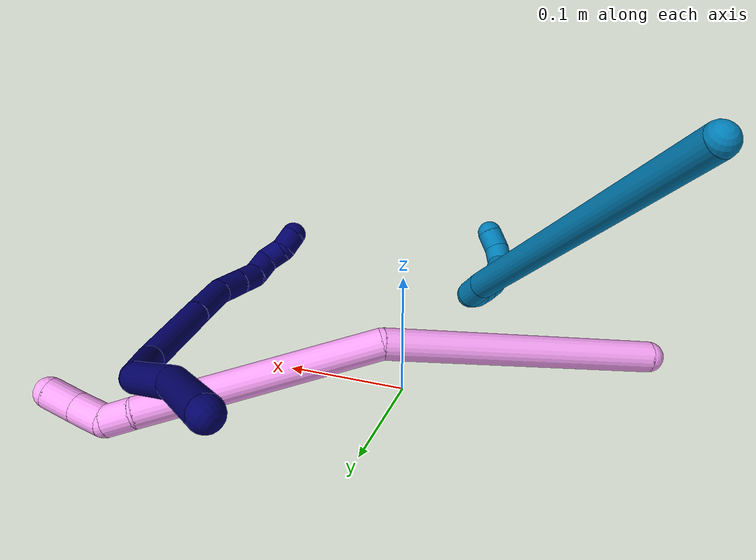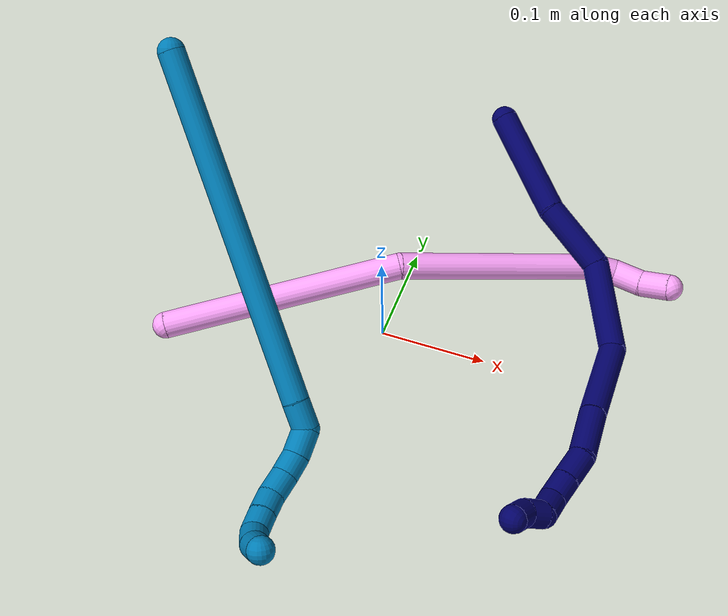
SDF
<sdf version="1.7">
 <world name="default">
  <model name="photoneo_s_sensor">
   <static>1</static>
   <pose>0 0 2 1.57079 1.57079 3.14159</pose>
   <link name="link">
    <inertial><mass>0.1</mass></inertial>
    <sensor name="sensor" type="depth">
     <update_rate>30</update_rate>
     <camera>
      <horizontal_fov>1.22</horizontal_fov>
      <image><width>1920</width><height>1200</height><format>B8G8R8</format></image>
      <clip><near>0.1</near><far>4</far></clip>
      <depth_camera><output>points</output></depth_camera>
     </camera>
     <plugin name="camera_plugin" filename="libgazebo_ros_depth_camera.so">
      <baseline>0.2</baseline>
      <alwaysOn>1</alwaysOn>
      <updateRate>0.0</updateRate>
      <cameraName>camera_ir</cameraName>
      <imageTopicName>/camera/color/image_raw</imageTopicName>
      <cameraInfoTopicName>/camera/color/camera_info</cameraInfoTopicName>
      <depthImageTopicName>/camera/depth/image_raw</depthImageTopicName>
      <depthImageCameraInfoTopicName>/camera/depth/camera_info</depthImageCameraInfoTopicName>
      <pointCloudTopicName>/camera/depth/points</pointCloudTopicName>
      <frameName>fr_optical</frameName>
      <pointCloudCutoff>0.1</pointCloudCutoff>
      <pointCloudCutoffMax>2.0</pointCloudCutoffMax>
      <distortionK1>0</distortionK1>
      <distortionK2>0</distortionK2>
      <distortionK3>0</distortionK3>
      <distortionT1>0</distortionT1>
      <distortionT2>0</distortionT2>
      <CxPrime>0</CxPrime>
      <Cx>0</Cx>
      <Cy>0</Cy>
      <focalLength>0</focalLength>
      <hackBaseline>0</hackBaseline>
     </plugin>
    </sensor>
   </link>
  </model>
  <model name="bin">
   <static>1</static>
   <link name="bottom">
    <collision name="collision-bottom">
     <pose>0 0 -0.01 0 -0 0</pose>
     <geometry><box><size>0.8 0.6 0.02</size></box></geometry>
     <surface>
      <friction><ode><mu>100</mu><mu2>100</mu2></ode></friction>
      <contact><collide_bitmask>65535</collide_bitmask></contact>
     </surface>
    </collision>
   </link>
   <link name="west_wall">
    <collision name="collision-west_wall">
     <pose>-0.41 0 0.1 0 -0 0</pose>
     <geometry><box><size>0.02 0.6 0.2</size></box></geometry>
     <surface>
      <friction><ode><mu>100</mu><mu2>100</mu2></ode></friction>
      <contact><collide_bitmask>65535</collide_bitmask></contact>
     </surface>
    </collision>
   </link>
   <link name="east_wall">
    <collision name="collision-east_wall">
     <pose>0.41 0 0.1 0 -0 0</pose>
     <geometry><box><size>0.02 0.6 0.2</size></box></geometry>
     <surface>
      <friction><ode><mu>100</mu><mu2>100</mu2></ode></friction>
      <contact><collide_bitmask>65535</collide_bitmask></contact>
     </surface>
    </collision>
   </link>
   <link name="south_wall">
    <collision name="collision-south_wall">
     <pose>0 -0.31 0.1 0 -0 0</pose>
     <geometry><box><size>0.8 0.02 0.2</size></box></geometry>
     <surface>
      <friction><ode><mu>100</mu><mu2>100</mu2></ode></friction>
      <contact><collide_bitmask>65535</collide_bitmask></contact>
     </surface>
    </collision>
   </link>
   <link name="north_wall">
    <collision name="collision-north_wall">
     <pose>0 0.31 0.1 0 -0 0</pose>
     <geometry><box><size>0.8 0.02 0.2</size></box></geometry>
     <surface>
      <friction><ode><mu>100</mu><mu2>100</mu2></ode></friction>
      <contact><collide_bitmask>65535</collide_bitmask></contact>
     </surface>
    </collision>
   </link>
  </model>
  <model name="4">
   <static>0</static>
   <link name="4">
    <collision name="collision-cylinder-e_1_1_4">
     <pose>0.097656 0.051441 0.02268 -1.15554 1.04845 -0.720994</pose>
     <geometry><cylinder><radius>0.0125</radius><length>0.225364</length></cylinder></geometry>
     <surface>
      <friction><ode><mu>1.16</mu><mu2>1.16</mu2><slip1>0</slip1><slip2>0</slip2></ode></friction>
      <contact><ode><kp>1e+06</kp><kd>1</kd><max_vel>0</max_vel><min_depth>0.001</min_depth></ode></contact>
     </surface>
    </collision>
    <visual name="visual-cylinder-e_1_1_4">
     <pose>0.097656 0.051441 0.02268 -1.15554 1.04845 -0.720994</pose>
     <geometry><cylinder><radius>0.0125</radius><length>0.225364</length></cylinder></geometry>
     <material><ambient>1 0.65098 0.996078 1</ambient></material>
    </visual>
    <collision name="collision-cylinder-e_2_4_5">
     <pose>0.287107 0.113524 0.073319 -0.363725 1.25575 -0.265396</pose>
     <geometry><cylinder><radius>0.0125</radius><length>0.193093</length></cylinder></geometry>
     <surface>
      <friction><ode><mu>1.16</mu><mu2>1.16</mu2><slip1>0</slip1><slip2>0</slip2></ode></friction>
      <contact><ode><kp>1e+06</kp><kd>1</kd><max_vel>0</max_vel><min_depth>0.001</min_depth></ode></contact>
     </surface>
    </collision>
    <visual name="visual-cylinder-e_2_4_5">
     <pose>0.287107 0.113524 0.073319 -0.363725 1.25575 -0.265396</pose>
     <geometry><cylinder><radius>0.0125</radius><length>0.193093</length></cylinder></geometry>
     <material><ambient>1 0.65098 0.996078 1</ambient></material>
    </visual>
    <collision name="collision-cylinder-e_3_5_6">
     <pose>0.38934 0.124321 0.106832 -0.027784 1.0816 -0.016685</pose>
     <geometry><cylinder><radius>0.0125</radius><length>0.02365</length></cylinder></geometry>
     <surface>
      <friction><ode><mu>1.16</mu><mu2>1.16</mu2><slip1>0</slip1><slip2>0</slip2></ode></friction>
      <contact><ode><kp>1e+06</kp><kd>1</kd><max_vel>0</max_vel><min_depth>0.001</min_depth></ode></contact>
     </surface>
    </collision>
    <visual name="visual-cylinder-e_3_5_6">
     <pose>0.38934 0.124321 0.106832 -0.027784 1.0816 -0.016685</pose>
     <geometry><cylinder><radius>0.0125</radius><length>0.02365</length></cylinder></geometry>
     <material><ambient>1 0.65098 0.996078 1</ambient></material>
    </visual>
    <collision name="collision-cylinder-e_4_6_7">
     <pose>0.406697 0.129952 0.124402 -0.427676 0.482661 -0.106796</pose>
     <geometry><cylinder><radius>0.0125</radius><length>0.029815</length></cylinder></geometry>
     <surface>
      <friction><ode><mu>1.16</mu><mu2>1.16</mu2><slip1>0</slip1><slip2>0</slip2></ode></friction>
      <contact><ode><kp>1e+06</kp><kd>1</kd><max_vel>0</max_vel><min_depth>0.001</min_depth></ode></contact>
     </surface>
    </collision>
    <visual name="visual-cylinder-e_4_6_7">
     <pose>0.406697 0.129952 0.124402 -0.427676 0.482661 -0.106796</pose>
     <geometry><cylinder><radius>0.0125</radius><length>0.029815</length></cylinder></geometry>
     <material><ambient>1 0.65098 0.996078 1</ambient></material>
    </visual>
    <collision name="collision-cylinder-e_5_7_2">
     <pose>0.420823 0.143168 0.14565 -0.697599 0.539069 -0.20026</pose>
     <geometry><cylinder><radius>0.0125</radius><length>0.028078</length></cylinder></geometry>
     <surface>
      <friction><ode><mu>1.16</mu><mu2>1.16</mu2><slip1>0</slip1><slip2>0</slip2></ode></friction>
      <contact><ode><kp>1e+06</kp><kd>1</kd><max_vel>0</max_vel><min_depth>0.001</min_depth></ode></contact>
     </surface>
    </collision>
    <visual name="visual-cylinder-e_5_7_2">
     <pose>0.420823 0.143168 0.14565 -0.697599 0.539069 -0.20026</pose>
     <geometry><cylinder><radius>0.0125</radius><length>0.028078</length></cylinder></geometry>
     <material><ambient>1 0.65098 0.996078 1</ambient></material>
    </visual>
    <collision name="collision-sphere-2">
     <pose>0.42803 0.150908 0.154884 0 -0 0</pose>
     <geometry><sphere><radius>0.0125</radius></sphere></geometry>
     <surface>
      <friction><ode><mu>1.16</mu><mu2>1.16</mu2><slip1>0</slip1><slip2>0</slip2></ode></friction>
      <contact><ode><kp>1e+06</kp><kd>1</kd><max_vel>0</max_vel><min_depth>0.001</min_depth></ode></contact>
     </surface>
    </collision>
    <visual name="visual-sphere-2">
     <pose>0.42803 0.150908 0.154884 0 -0 0</pose>
     <geometry><sphere><radius>0.0125</radius></sphere></geometry>
     <material><ambient>1 0.65098 0.996078 1</ambient></material>
    </visual>
    <collision name="collision-sphere-7">
     <pose>0.413616 0.135429 0.136417 0 -0 0</pose>
     <geometry><sphere><radius>0.0125</radius></sphere></geometry>
     <surface>
      <friction><ode><mu>1.16</mu><mu2>1.16</mu2><slip1>0</slip1><slip2>0</slip2></ode></friction>
      <contact><ode><kp>1e+06</kp><kd>1</kd><max_vel>0</max_vel><min_depth>0.001</min_depth></ode></contact>
     </surface>
    </collision>
    <visual name="visual-sphere-7">
     <pose>0.413616 0.135429 0.136417 0 -0 0</pose>
     <geometry><sphere><radius>0.0125</radius></sphere></geometry>
     <material><ambient>1 0.65098 0.996078 1</ambient></material>
    </visual>
    <collision name="collision-sphere-6">
     <pose>0.399778 0.124476 0.112387 0 -0 0</pose>
     <geometry><sphere><radius>0.0125</radius></sphere></geometry>
     <surface>
      <friction><ode><mu>1.16</mu><mu2>1.16</mu2><slip1>0</slip1><slip2>0</slip2></ode></friction>
      <contact><ode><kp>1e+06</kp><kd>1</kd><max_vel>0</max_vel><min_depth>0.001</min_depth></ode></contact>
     </surface>
    </collision>
    <visual name="visual-sphere-6">
     <pose>0.399778 0.124476 0.112387 0 -0 0</pose>
     <geometry><sphere><radius>0.0125</radius></sphere></geometry>
     <material><ambient>1 0.65098 0.996078 1</ambient></material>
    </visual>
    <collision name="collision-sphere-5">
     <pose>0.378902 0.124167 0.101277 0 -0 0</pose>
     <geometry><sphere><radius>0.0125</radius></sphere></geometry>
     <surface>
      <friction><ode><mu>1.16</mu><mu2>1.16</mu2><slip1>0</slip1><slip2>0</slip2></ode></friction>
      <contact><ode><kp>1e+06</kp><kd>1</kd><max_vel>0</max_vel><min_depth>0.001</min_depth></ode></contact>
     </surface>
    </collision>
    <visual name="visual-sphere-5">
     <pose>0.378902 0.124167 0.101277 0 -0 0</pose>
     <geometry><sphere><radius>0.0125</radius></sphere></geometry>
     <material><ambient>1 0.65098 0.996078 1</ambient></material>
    </visual>
    <collision name="collision-sphere-1">
     <geometry><sphere><radius>0.0125</radius></sphere></geometry>
     <surface>
      <friction><ode><mu>1.16</mu><mu2>1.16</mu2><slip1>0</slip1><slip2>0</slip2></ode></friction>
      <contact><ode><kp>1e+06</kp><kd>1</kd><max_vel>0</max_vel><min_depth>0.001</min_depth></ode></contact>
     </surface>
    </collision>
    <visual name="visual-sphere-1">
     <geometry><sphere><radius>0.0125</radius></sphere></geometry>
     <material><ambient>1 0.65098 0.996078 1</ambient></material>
    </visual>
    <collision name="collision-sphere-4">
     <pose>0.195312 0.102881 0.04536 0 -0 0</pose>
     <geometry><sphere><radius>0.0125</radius></sphere></geometry>
     <surface>
      <friction><ode><mu>1.16</mu><mu2>1.16</mu2><slip1>0</slip1><slip2>0</slip2></ode></friction>
      <contact><ode><kp>1e+06</kp><kd>1</kd><max_vel>0</max_vel><min_depth>0.001</min_depth></ode></contact>
     </surface>
    </collision>
    <visual name="visual-sphere-4">
     <pose>0.195312 0.102881 0.04536 0 -0 0</pose>
     <geometry><sphere><radius>0.0125</radius></sphere></geometry>
     <material><ambient>1 0.65098 0.996078 1</ambient></material>
    </visual>
    <inertial>
     <pose>0.221192 0.088696 0.059187 0 -0 0</pose>
     <mass>0.5</mass>
     <inertia>
      <ixx>0.000215</ixx>
      <ixy>0</ixy>
      <ixz>0</ixz>
      <iyy>0.001049</iyy>
      <iyz>0</iyz>
      <izz>-0.001914</izz>
     </inertia>
    </inertial>
   </link>
   <pose>-0.187728 -0.076152 0.025281 1.78438 0.27349 0.83335</pose>
  </model>
  <model name="7">
   <static>0</static>
   <link name="7">
    <collision name="collision-cylinder-e_1_1_4">
     <pose>0.020679 -0.032017 0.035319 0.736402 0.409294 0.159804</pose>
     <geometry><cylinder><radius>0.0125</radius><length>0.103925</length></cylinder></geometry>
     <surface>
      <friction><ode><mu>1.16</mu><mu2>1.16</mu2><slip1>0</slip1><slip2>0</slip2></ode></friction>
      <contact><ode><kp>1e+06</kp><kd>1</kd><max_vel>0</max_vel><min_depth>0.001</min_depth></ode></contact>
     </surface>
    </collision>
    <visual name="visual-cylinder-e_1_1_4">
     <pose>0.020679 -0.032017 0.035319 0.736402 0.409294 0.159804</pose>
     <geometry><cylinder><radius>0.0125</radius><length>0.103925</length></cylinder></geometry>
     <material><ambient>0.003922 0 0.403922 1</ambient></material>
    </visual>
    <collision name="collision-cylinder-e_2_4_5">
     <pose>0.060095 -0.078182 0.095352 0.519922 0.581942 0.158971</pose>
     <geometry><cylinder><radius>0.0125</radius><length>0.068179</length></cylinder></geometry>
     <surface>
      <friction><ode><mu>1.16</mu><mu2>1.16</mu2><slip1>0</slip1><slip2>0</slip2></ode></friction>
      <contact><ode><kp>1e+06</kp><kd>1</kd><max_vel>0</max_vel><min_depth>0.001</min_depth></ode></contact>
     </surface>
    </collision>
    <visual name="visual-cylinder-e_2_4_5">
     <pose>0.060095 -0.078182 0.095352 0.519922 0.581942 0.158971</pose>
     <geometry><cylinder><radius>0.0125</radius><length>0.068179</length></cylinder></geometry>
     <material><ambient>0.003922 0 0.403922 1</ambient></material>
    </visual>
    <collision name="collision-cylinder-e_3_5_6">
     <pose>0.090747 -0.126552 0.142268 0.995317 0.284159 0.15511</pose>
     <geometry><cylinder><radius>0.0125</radius><length>0.084993</length></cylinder></geometry>
     <surface>
      <friction><ode><mu>1.16</mu><mu2>1.16</mu2><slip1>0</slip1><slip2>0</slip2></ode></friction>
      <contact><ode><kp>1e+06</kp><kd>1</kd><max_vel>0</max_vel><min_depth>0.001</min_depth></ode></contact>
     </surface>
    </collision>
    <visual name="visual-cylinder-e_3_5_6">
     <pose>0.090747 -0.126552 0.142268 0.995317 0.284159 0.15511</pose>
     <geometry><cylinder><radius>0.0125</radius><length>0.084993</length></cylinder></geometry>
     <material><ambient>0.003922 0 0.403922 1</ambient></material>
    </visual>
    <collision name="collision-cylinder-e_4_6_7">
     <pose>0.090193 -0.196139 0.178611 1.19038 -0.316333 -0.215159</pose>
     <geometry><cylinder><radius>0.0125</radius><length>0.080153</length></cylinder></geometry>
     <surface>
      <friction><ode><mu>1.16</mu><mu2>1.16</mu2><slip1>0</slip1><slip2>0</slip2></ode></friction>
      <contact><ode><kp>1e+06</kp><kd>1</kd><max_vel>0</max_vel><min_depth>0.001</min_depth></ode></contact>
     </surface>
    </collision>
    <visual name="visual-cylinder-e_4_6_7">
     <pose>0.090193 -0.196139 0.178611 1.19038 -0.316333 -0.215159</pose>
     <geometry><cylinder><radius>0.0125</radius><length>0.080153</length></cylinder></geometry>
     <material><ambient>0.003922 0 0.403922 1</ambient></material>
    </visual>
    <collision name="collision-cylinder-e_5_7_8">
     <pose>0.071748 -0.252769 0.201458 1.18226 -0.254523 -0.171342</pose>
     <geometry><cylinder><radius>0.0125</radius><length>0.047486</length></cylinder></geometry>
     <surface>
      <friction><ode><mu>1.16</mu><mu2>1.16</mu2><slip1>0</slip1><slip2>0</slip2></ode></friction>
      <contact><ode><kp>1e+06</kp><kd>1</kd><max_vel>0</max_vel><min_depth>0.001</min_depth></ode></contact>
     </surface>
    </collision>
    <visual name="visual-cylinder-e_5_7_8">
     <pose>0.071748 -0.252769 0.201458 1.18226 -0.254523 -0.171342</pose>
     <geometry><cylinder><radius>0.0125</radius><length>0.047486</length></cylinder></geometry>
     <material><ambient>0.003922 0 0.403922 1</ambient></material>
    </visual>
    <collision name="collision-cylinder-e_6_8_9">
     <pose>0.061003 -0.287221 0.211153 1.49583 -0.346027 -0.321458</pose>
     <geometry><cylinder><radius>0.0125</radius><length>0.028113</length></cylinder></geometry>
     <surface>
      <friction><ode><mu>1.16</mu><mu2>1.16</mu2><slip1>0</slip1><slip2>0</slip2></ode></friction>
      <contact><ode><kp>1e+06</kp><kd>1</kd><max_vel>0</max_vel><min_depth>0.001</min_depth></ode></contact>
     </surface>
    </collision>
    <visual name="visual-cylinder-e_6_8_9">
     <pose>0.061003 -0.287221 0.211153 1.49583 -0.346027 -0.321458</pose>
     <geometry><cylinder><radius>0.0125</radius><length>0.028113</length></cylinder></geometry>
     <material><ambient>0.003922 0 0.403922 1</ambient></material>
    </visual>
    <collision name="collision-cylinder-e_7_9_10">
     <pose>0.052329 -0.311411 0.213019 1.49138 -0.340114 -0.314567</pose>
     <geometry><cylinder><radius>0.0125</radius><length>0.023418</length></cylinder></geometry>
     <surface>
      <friction><ode><mu>1.16</mu><mu2>1.16</mu2><slip1>0</slip1><slip2>0</slip2></ode></friction>
      <contact><ode><kp>1e+06</kp><kd>1</kd><max_vel>0</max_vel><min_depth>0.001</min_depth></ode></contact>
     </surface>
    </collision>
    <visual name="visual-cylinder-e_7_9_10">
     <pose>0.052329 -0.311411 0.213019 1.49138 -0.340114 -0.314567</pose>
     <geometry><cylinder><radius>0.0125</radius><length>0.023418</length></cylinder></geometry>
     <material><ambient>0.003922 0 0.403922 1</ambient></material>
    </visual>
    <collision name="collision-cylinder-e_8_10_11">
     <pose>0.041548 -0.331211 0.21753 1.17892 -0.625531 -0.425975</pose>
     <geometry><cylinder><radius>0.0125</radius><length>0.023483</length></cylinder></geometry>
     <surface>
      <friction><ode><mu>1.16</mu><mu2>1.16</mu2><slip1>0</slip1><slip2>0</slip2></ode></friction>
      <contact><ode><kp>1e+06</kp><kd>1</kd><max_vel>0</max_vel><min_depth>0.001</min_depth></ode></contact>
     </surface>
    </collision>
    <visual name="visual-cylinder-e_8_10_11">
     <pose>0.041548 -0.331211 0.21753 1.17892 -0.625531 -0.425975</pose>
     <geometry><cylinder><radius>0.0125</radius><length>0.023483</length></cylinder></geometry>
     <material><ambient>0.003922 0 0.403922 1</ambient></material>
    </visual>
    <collision name="collision-cylinder-e_9_11_12">
     <pose>0.02584 -0.343835 0.218261 2.22 -1.07261 -1.74995</pose>
     <geometry><cylinder><radius>0.0125</radius><length>0.020109</length></cylinder></geometry>
     <surface>
      <friction><ode><mu>1.16</mu><mu2>1.16</mu2><slip1>0</slip1><slip2>0</slip2></ode></friction>
      <contact><ode><kp>1e+06</kp><kd>1</kd><max_vel>0</max_vel><min_depth>0.001</min_depth></ode></contact>
     </surface>
    </collision>
    <visual name="visual-cylinder-e_9_11_12">
     <pose>0.02584 -0.343835 0.218261 2.22 -1.07261 -1.74995</pose>
     <geometry><cylinder><radius>0.0125</radius><length>0.020109</length></cylinder></geometry>
     <material><ambient>0.003922 0 0.403922 1</ambient></material>
    </visual>
    <collision name="collision-cylinder-e_10_12_2">
     <pose>0.008751 -0.353037 0.217443 1.20054 -0.961261 -0.685658</pose>
     <geometry><cylinder><radius>0.0125</radius><length>0.02014</length></cylinder></geometry>
     <surface>
      <friction><ode><mu>1.16</mu><mu2>1.16</mu2><slip1>0</slip1><slip2>0</slip2></ode></friction>
      <contact><ode><kp>1e+06</kp><kd>1</kd><max_vel>0</max_vel><min_depth>0.001</min_depth></ode></contact>
     </surface>
    </collision>
    <visual name="visual-cylinder-e_10_12_2">
     <pose>0.008751 -0.353037 0.217443 1.20054 -0.961261 -0.685658</pose>
     <geometry><cylinder><radius>0.0125</radius><length>0.02014</length></cylinder></geometry>
     <material><ambient>0.003922 0 0.403922 1</ambient></material>
    </visual>
    <collision name="collision-sphere-2">
     <pose>0.000494 -0.358411 0.219529 0 -0 0</pose>
     <geometry><sphere><radius>0.0125</radius></sphere></geometry>
     <surface>
      <friction><ode><mu>1.16</mu><mu2>1.16</mu2><slip1>0</slip1><slip2>0</slip2></ode></friction>
      <contact><ode><kp>1e+06</kp><kd>1</kd><max_vel>0</max_vel><min_depth>0.001</min_depth></ode></contact>
     </surface>
    </collision>
    <visual name="visual-sphere-2">
     <pose>0.000494 -0.358411 0.219529 0 -0 0</pose>
     <geometry><sphere><radius>0.0125</radius></sphere></geometry>
     <material><ambient>0.003922 0 0.403922 1</ambient></material>
    </visual>
    <collision name="collision-sphere-12">
     <pose>0.017008 -0.347662 0.215357 0 -0 0</pose>
     <geometry><sphere><radius>0.0125</radius></sphere></geometry>
     <surface>
      <friction><ode><mu>1.16</mu><mu2>1.16</mu2><slip1>0</slip1><slip2>0</slip2></ode></friction>
      <contact><ode><kp>1e+06</kp><kd>1</kd><max_vel>0</max_vel><min_depth>0.001</min_depth></ode></contact>
     </surface>
    </collision>
    <visual name="visual-sphere-12">
     <pose>0.017008 -0.347662 0.215357 0 -0 0</pose>
     <geometry><sphere><radius>0.0125</radius></sphere></geometry>
     <material><ambient>0.003922 0 0.403922 1</ambient></material>
    </visual>
    <collision name="collision-sphere-11">
     <pose>0.034673 -0.340008 0.221166 0 -0 0</pose>
     <geometry><sphere><radius>0.0125</radius></sphere></geometry>
     <surface>
      <friction><ode><mu>1.16</mu><mu2>1.16</mu2><slip1>0</slip1><slip2>0</slip2></ode></friction>
      <contact><ode><kp>1e+06</kp><kd>1</kd><max_vel>0</max_vel><min_depth>0.001</min_depth></ode></contact>
     </surface>
    </collision>
    <visual name="visual-sphere-11">
     <pose>0.034673 -0.340008 0.221166 0 -0 0</pose>
     <geometry><sphere><radius>0.0125</radius></sphere></geometry>
     <material><ambient>0.003922 0 0.403922 1</ambient></material>
    </visual>
    <collision name="collision-sphere-10">
     <pose>0.048423 -0.322414 0.213895 0 -0 0</pose>
     <geometry><sphere><radius>0.0125</radius></sphere></geometry>
     <surface>
      <friction><ode><mu>1.16</mu><mu2>1.16</mu2><slip1>0</slip1><slip2>0</slip2></ode></friction>
      <contact><ode><kp>1e+06</kp><kd>1</kd><max_vel>0</max_vel><min_depth>0.001</min_depth></ode></contact>
     </surface>
    </collision>
    <visual name="visual-sphere-10">
     <pose>0.048423 -0.322414 0.213895 0 -0 0</pose>
     <geometry><sphere><radius>0.0125</radius></sphere></geometry>
     <material><ambient>0.003922 0 0.403922 1</ambient></material>
    </visual>
    <collision name="collision-sphere-9">
     <pose>0.056235 -0.300407 0.212144 0 -0 0</pose>
     <geometry><sphere><radius>0.0125</radius></sphere></geometry>
     <surface>
      <friction><ode><mu>1.16</mu><mu2>1.16</mu2><slip1>0</slip1><slip2>0</slip2></ode></friction>
      <contact><ode><kp>1e+06</kp><kd>1</kd><max_vel>0</max_vel><min_depth>0.001</min_depth></ode></contact>
     </surface>
    </collision>
    <visual name="visual-sphere-9">
     <pose>0.056235 -0.300407 0.212144 0 -0 0</pose>
     <geometry><sphere><radius>0.0125</radius></sphere></geometry>
     <material><ambient>0.003922 0 0.403922 1</ambient></material>
    </visual>
    <collision name="collision-sphere-4">
     <pose>0.041358 -0.064033 0.070637 0 -0 0</pose>
     <geometry><sphere><radius>0.0125</radius></sphere></geometry>
     <surface>
      <friction><ode><mu>1.16</mu><mu2>1.16</mu2><slip1>0</slip1><slip2>0</slip2></ode></friction>
      <contact><ode><kp>1e+06</kp><kd>1</kd><max_vel>0</max_vel><min_depth>0.001</min_depth></ode></contact>
     </surface>
    </collision>
    <visual name="visual-sphere-4">
     <pose>0.041358 -0.064033 0.070637 0 -0 0</pose>
     <geometry><sphere><radius>0.0125</radius></sphere></geometry>
     <material><ambient>0.003922 0 0.403922 1</ambient></material>
    </visual>
    <collision name="collision-sphere-1">
     <geometry><sphere><radius>0.0125</radius></sphere></geometry>
     <surface>
      <friction><ode><mu>1.16</mu><mu2>1.16</mu2><slip1>0</slip1><slip2>0</slip2></ode></friction>
      <contact><ode><kp>1e+06</kp><kd>1</kd><max_vel>0</max_vel><min_depth>0.001</min_depth></ode></contact>
     </surface>
    </collision>
    <visual name="visual-sphere-1">
     <geometry><sphere><radius>0.0125</radius></sphere></geometry>
     <material><ambient>0.003922 0 0.403922 1</ambient></material>
    </visual>
    <collision name="collision-sphere-8">
     <pose>0.06577 -0.274035 0.210163 0 -0 0</pose>
     <geometry><sphere><radius>0.0125</radius></sphere></geometry>
     <surface>
      <friction><ode><mu>1.16</mu><mu2>1.16</mu2><slip1>0</slip1><slip2>0</slip2></ode></friction>
      <contact><ode><kp>1e+06</kp><kd>1</kd><max_vel>0</max_vel><min_depth>0.001</min_depth></ode></contact>
     </surface>
    </collision>
    <visual name="visual-sphere-8">
     <pose>0.06577 -0.274035 0.210163 0 -0 0</pose>
     <geometry><sphere><radius>0.0125</radius></sphere></geometry>
     <material><ambient>0.003922 0 0.403922 1</ambient></material>
    </visual>
    <collision name="collision-sphere-5">
     <pose>0.078833 -0.09233 0.120067 0 -0 0</pose>
     <geometry><sphere><radius>0.0125</radius></sphere></geometry>
     <surface>
      <friction><ode><mu>1.16</mu><mu2>1.16</mu2><slip1>0</slip1><slip2>0</slip2></ode></friction>
      <contact><ode><kp>1e+06</kp><kd>1</kd><max_vel>0</max_vel><min_depth>0.001</min_depth></ode></contact>
     </surface>
    </collision>
    <visual name="visual-sphere-5">
     <pose>0.078833 -0.09233 0.120067 0 -0 0</pose>
     <geometry><sphere><radius>0.0125</radius></sphere></geometry>
     <material><ambient>0.003922 0 0.403922 1</ambient></material>
    </visual>
    <collision name="collision-sphere-6">
     <pose>0.10266 -0.160774 0.164469 0 -0 0</pose>
     <geometry><sphere><radius>0.0125</radius></sphere></geometry>
     <surface>
      <friction><ode><mu>1.16</mu><mu2>1.16</mu2><slip1>0</slip1><slip2>0</slip2></ode></friction>
      <contact><ode><kp>1e+06</kp><kd>1</kd><max_vel>0</max_vel><min_depth>0.001</min_depth></ode></contact>
     </surface>
    </collision>
    <visual name="visual-sphere-6">
     <pose>0.10266 -0.160774 0.164469 0 -0 0</pose>
     <geometry><sphere><radius>0.0125</radius></sphere></geometry>
     <material><ambient>0.003922 0 0.403922 1</ambient></material>
    </visual>
    <collision name="collision-sphere-7">
     <pose>0.077726 -0.231504 0.192753 0 -0 0</pose>
     <geometry><sphere><radius>0.0125</radius></sphere></geometry>
     <surface>
      <friction><ode><mu>1.16</mu><mu2>1.16</mu2><slip1>0</slip1><slip2>0</slip2></ode></friction>
      <contact><ode><kp>1e+06</kp><kd>1</kd><max_vel>0</max_vel><min_depth>0.001</min_depth></ode></contact>
     </surface>
    </collision>
    <visual name="visual-sphere-7">
     <pose>0.077726 -0.231504 0.192753 0 -0 0</pose>
     <geometry><sphere><radius>0.0125</radius></sphere></geometry>
     <material><ambient>0.003922 0 0.403922 1</ambient></material>
    </visual>
    <inertial>
     <pose>0.058415 -0.168615 0.141895 0 -0 0</pose>
     <mass>0.5</mass>
     <inertia>
      <ixx>0.000235</ixx>
      <ixy>0</ixy>
      <ixz>0</ixz>
      <iyy>0.000145</iyy>
      <iyz>0</iyz>
      <izz>0.000143</izz>
     </inertia>
    </inertial>
   </link>
   <pose>0.049488 0.217411 0.097858 0.781925 1.03188 0.518435</pose>
  </model>
  <model name="9">
   <static>0</static>
   <link name="9">
    <collision name="collision-cylinder-e_1_1_4">
     <pose>-0.010817 -0.054444 0.152546 0.342811 -0.066684 -0.011547</pose>
     <geometry><cylinder><radius>0.0125</radius><length>0.324662</length></cylinder></geometry>
     <surface>
      <friction><ode><mu>1.16</mu><mu2>1.16</mu2><slip1>0</slip1><slip2>0</slip2></ode></friction>
      <contact><ode><kp>1e+06</kp><kd>1</kd><max_vel>0</max_vel><min_depth>0.001</min_depth></ode></contact>
     </surface>
    </collision>
    <visual name="visual-cylinder-e_1_1_4">
     <pose>-0.010817 -0.054444 0.152546 0.342811 -0.066684 -0.011547</pose>
     <geometry><cylinder><radius>0.0125</radius><length>0.324662</length></cylinder></geometry>
     <material><ambient>0 0.490196 0.709804 1</ambient></material>
    </visual>
    <collision name="collision-cylinder-e_2_4_5">
     <pose>-0.023332 -0.112621 0.317705 0.287713 -0.12837 -0.01862</pose>
     <geometry><cylinder><radius>0.0125</radius><length>0.026528</length></cylinder></geometry>
     <surface>
      <friction><ode><mu>1.16</mu><mu2>1.16</mu2><slip1>0</slip1><slip2>0</slip2></ode></friction>
      <contact><ode><kp>1e+06</kp><kd>1</kd><max_vel>0</max_vel><min_depth>0.001</min_depth></ode></contact>
     </surface>
    </collision>
    <visual name="visual-cylinder-e_2_4_5">
     <pose>-0.023332 -0.112621 0.317705 0.287713 -0.12837 -0.01862</pose>
     <geometry><cylinder><radius>0.0125</radius><length>0.026528</length></cylinder></geometry>
     <material><ambient>0 0.490196 0.709804 1</ambient></material>
    </visual>
    <collision name="collision-cylinder-e_3_5_6">
     <pose>-0.017827 -0.116685 0.340692 0.031928 0.60669 0.009994</pose>
     <geometry><cylinder><radius>0.0125</radius><length>0.025265</length></cylinder></geometry>
     <surface>
      <friction><ode><mu>1.16</mu><mu2>1.16</mu2><slip1>0</slip1><slip2>0</slip2></ode></friction>
      <contact><ode><kp>1e+06</kp><kd>1</kd><max_vel>0</max_vel><min_depth>0.001</min_depth></ode></contact>
     </surface>
    </collision>
    <visual name="visual-cylinder-e_3_5_6">
     <pose>-0.017827 -0.116685 0.340692 0.031928 0.60669 0.009994</pose>
     <geometry><cylinder><radius>0.0125</radius><length>0.025265</length></cylinder></geometry>
     <material><ambient>0 0.490196 0.709804 1</ambient></material>
    </visual>
    <collision name="collision-cylinder-e_4_6_7">
     <pose>-0.002874 -0.117439 0.357773 0.062916 0.856398 0.028725</pose>
     <geometry><cylinder><radius>0.0125</radius><length>0.020518</length></cylinder></geometry>
     <surface>
      <friction><ode><mu>1.16</mu><mu2>1.16</mu2><slip1>0</slip1><slip2>0</slip2></ode></friction>
      <contact><ode><kp>1e+06</kp><kd>1</kd><max_vel>0</max_vel><min_depth>0.001</min_depth></ode></contact>
     </surface>
    </collision>
    <visual name="visual-cylinder-e_4_6_7">
     <pose>-0.002874 -0.117439 0.357773 0.062916 0.856398 0.028725</pose>
     <geometry><cylinder><radius>0.0125</radius><length>0.020518</length></cylinder></geometry>
     <material><ambient>0 0.490196 0.709804 1</ambient></material>
    </visual>
    <collision name="collision-cylinder-e_5_7_8">
     <pose>0.013987 -0.118684 0.370953 0.126415 0.949378 0.065026</pose>
     <geometry><cylinder><radius>0.0125</radius><length>0.02241</length></cylinder></geometry>
     <surface>
      <friction><ode><mu>1.16</mu><mu2>1.16</mu2><slip1>0</slip1><slip2>0</slip2></ode></friction>
      <contact><ode><kp>1e+06</kp><kd>1</kd><max_vel>0</max_vel><min_depth>0.001</min_depth></ode></contact>
     </surface>
    </collision>
    <visual name="visual-cylinder-e_5_7_8">
     <pose>0.013987 -0.118684 0.370953 0.126415 0.949378 0.065026</pose>
     <geometry><cylinder><radius>0.0125</radius><length>0.02241</length></cylinder></geometry>
     <material><ambient>0 0.490196 0.709804 1</ambient></material>
    </visual>
    <collision name="collision-cylinder-e_6_8_9">
     <pose>0.03133 -0.122785 0.382204 0.601266 0.957381 0.319044</pose>
     <geometry><cylinder><radius>0.0125</radius><length>0.020138</length></cylinder></geometry>
     <surface>
      <friction><ode><mu>1.16</mu><mu2>1.16</mu2><slip1>0</slip1><slip2>0</slip2></ode></friction>
      <contact><ode><kp>1e+06</kp><kd>1</kd><max_vel>0</max_vel><min_depth>0.001</min_depth></ode></contact>
     </surface>
    </collision>
    <visual name="visual-cylinder-e_6_8_9">
     <pose>0.03133 -0.122785 0.382204 0.601266 0.957381 0.319044</pose>
     <geometry><cylinder><radius>0.0125</radius><length>0.020138</length></cylinder></geometry>
     <material><ambient>0 0.490196 0.709804 1</ambient></material>
    </visual>
    <collision name="collision-cylinder-e_7_9_10">
     <pose>0.047608 -0.129469 0.392097 0.587358 0.918626 0.296952</pose>
     <geometry><cylinder><radius>0.0125</radius><length>0.020245</length></cylinder></geometry>
     <surface>
      <friction><ode><mu>1.16</mu><mu2>1.16</mu2><slip1>0</slip1><slip2>0</slip2></ode></friction>
      <contact><ode><kp>1e+06</kp><kd>1</kd><max_vel>0</max_vel><min_depth>0.001</min_depth></ode></contact>
     </surface>
    </collision>
    <visual name="visual-cylinder-e_7_9_10">
     <pose>0.047608 -0.129469 0.392097 0.587358 0.918626 0.296952</pose>
     <geometry><cylinder><radius>0.0125</radius><length>0.020245</length></cylinder></geometry>
     <material><ambient>0 0.490196 0.709804 1</ambient></material>
    </visual>
    <collision name="collision-cylinder-e_8_10_11">
     <pose>0.062242 -0.140377 0.398342 1.42115 0.715024 0.622059</pose>
     <geometry><cylinder><radius>0.0125</radius><length>0.020102</length></cylinder></geometry>
     <surface>
      <friction><ode><mu>1.16</mu><mu2>1.16</mu2><slip1>0</slip1><slip2>0</slip2></ode></friction>
      <contact><ode><kp>1e+06</kp><kd>1</kd><max_vel>0</max_vel><min_depth>0.001</min_depth></ode></contact>
     </surface>
    </collision>
    <visual name="visual-cylinder-e_8_10_11">
     <pose>0.062242 -0.140377 0.398342 1.42115 0.715024 0.622059</pose>
     <geometry><cylinder><radius>0.0125</radius><length>0.020102</length></cylinder></geometry>
     <material><ambient>0 0.490196 0.709804 1</ambient></material>
    </visual>
    <collision name="collision-cylinder-e_9_11_2">
     <pose>0.073075 -0.156909 0.398119 1.71976 0.435118 0.502565</pose>
     <geometry><cylinder><radius>0.0125</radius><length>0.020134</length></cylinder></geometry>
     <surface>
      <friction><ode><mu>1.16</mu><mu2>1.16</mu2><slip1>0</slip1><slip2>0</slip2></ode></friction>
      <contact><ode><kp>1e+06</kp><kd>1</kd><max_vel>0</max_vel><min_depth>0.001</min_depth></ode></contact>
     </surface>
    </collision>
    <visual name="visual-cylinder-e_9_11_2">
     <pose>0.073075 -0.156909 0.398119 1.71976 0.435118 0.502565</pose>
     <geometry><cylinder><radius>0.0125</radius><length>0.020134</length></cylinder></geometry>
     <material><ambient>0 0.490196 0.709804 1</ambient></material>
    </visual>
    <collision name="collision-sphere-2">
     <pose>0.077319 -0.165937 0.396764 0 -0 0</pose>
     <geometry><sphere><radius>0.0125</radius></sphere></geometry>
     <surface>
      <friction><ode><mu>1.16</mu><mu2>1.16</mu2><slip1>0</slip1><slip2>0</slip2></ode></friction>
      <contact><ode><kp>1e+06</kp><kd>1</kd><max_vel>0</max_vel><min_depth>0.001</min_depth></ode></contact>
     </surface>
    </collision>
    <visual name="visual-sphere-2">
     <pose>0.077319 -0.165937 0.396764 0 -0 0</pose>
     <geometry><sphere><radius>0.0125</radius></sphere></geometry>
     <material><ambient>0 0.490196 0.709804 1</ambient></material>
    </visual>
    <collision name="collision-sphere-11">
     <pose>0.068832 -0.147882 0.399474 0 -0 0</pose>
     <geometry><sphere><radius>0.0125</radius></sphere></geometry>
     <surface>
      <friction><ode><mu>1.16</mu><mu2>1.16</mu2><slip1>0</slip1><slip2>0</slip2></ode></friction>
      <contact><ode><kp>1e+06</kp><kd>1</kd><max_vel>0</max_vel><min_depth>0.001</min_depth></ode></contact>
     </surface>
    </collision>
    <visual name="visual-sphere-11">
     <pose>0.068832 -0.147882 0.399474 0 -0 0</pose>
     <geometry><sphere><radius>0.0125</radius></sphere></geometry>
     <material><ambient>0 0.490196 0.709804 1</ambient></material>
    </visual>
    <collision name="collision-sphere-10">
     <pose>0.055653 -0.132873 0.397211 0 -0 0</pose>
     <geometry><sphere><radius>0.0125</radius></sphere></geometry>
     <surface>
      <friction><ode><mu>1.16</mu><mu2>1.16</mu2><slip1>0</slip1><slip2>0</slip2></ode></friction>
      <contact><ode><kp>1e+06</kp><kd>1</kd><max_vel>0</max_vel><min_depth>0.001</min_depth></ode></contact>
     </surface>
    </collision>
    <visual name="visual-sphere-10">
     <pose>0.055653 -0.132873 0.397211 0 -0 0</pose>
     <geometry><sphere><radius>0.0125</radius></sphere></geometry>
     <material><ambient>0 0.490196 0.709804 1</ambient></material>
    </visual>
    <collision name="collision-sphere-9">
     <pose>0.039563 -0.126064 0.386983 0 -0 0</pose>
     <geometry><sphere><radius>0.0125</radius></sphere></geometry>
     <surface>
      <friction><ode><mu>1.16</mu><mu2>1.16</mu2><slip1>0</slip1><slip2>0</slip2></ode></friction>
      <contact><ode><kp>1e+06</kp><kd>1</kd><max_vel>0</max_vel><min_depth>0.001</min_depth></ode></contact>
     </surface>
    </collision>
    <visual name="visual-sphere-9">
     <pose>0.039563 -0.126064 0.386983 0 -0 0</pose>
     <geometry><sphere><radius>0.0125</radius></sphere></geometry>
     <material><ambient>0 0.490196 0.709804 1</ambient></material>
    </visual>
    <collision name="collision-sphere-4">
     <pose>-0.021634 -0.108888 0.305091 0 -0 0</pose>
     <geometry><sphere><radius>0.0125</radius></sphere></geometry>
     <surface>
      <friction><ode><mu>1.16</mu><mu2>1.16</mu2><slip1>0</slip1><slip2>0</slip2></ode></friction>
      <contact><ode><kp>1e+06</kp><kd>1</kd><max_vel>0</max_vel><min_depth>0.001</min_depth></ode></contact>
     </surface>
    </collision>
    <visual name="visual-sphere-4">
     <pose>-0.021634 -0.108888 0.305091 0 -0 0</pose>
     <geometry><sphere><radius>0.0125</radius></sphere></geometry>
     <material><ambient>0 0.490196 0.709804 1</ambient></material>
    </visual>
    <collision name="collision-sphere-1">
     <geometry><sphere><radius>0.0125</radius></sphere></geometry>
     <surface>
      <friction><ode><mu>1.16</mu><mu2>1.16</mu2><slip1>0</slip1><slip2>0</slip2></ode></friction>
      <contact><ode><kp>1e+06</kp><kd>1</kd><max_vel>0</max_vel><min_depth>0.001</min_depth></ode></contact>
     </surface>
    </collision>
    <visual name="visual-sphere-1">
     <geometry><sphere><radius>0.0125</radius></sphere></geometry>
     <material><ambient>0 0.490196 0.709804 1</ambient></material>
    </visual>
    <collision name="collision-sphere-8">
     <pose>0.023097 -0.119506 0.377424 0 -0 0</pose>
     <geometry><sphere><radius>0.0125</radius></sphere></geometry>
     <surface>
      <friction><ode><mu>1.16</mu><mu2>1.16</mu2><slip1>0</slip1><slip2>0</slip2></ode></friction>
      <contact><ode><kp>1e+06</kp><kd>1</kd><max_vel>0</max_vel><min_depth>0.001</min_depth></ode></contact>
     </surface>
    </collision>
    <visual name="visual-sphere-8">
     <pose>0.023097 -0.119506 0.377424 0 -0 0</pose>
     <geometry><sphere><radius>0.0125</radius></sphere></geometry>
     <material><ambient>0 0.490196 0.709804 1</ambient></material>
    </visual>
    <collision name="collision-sphere-5">
     <pose>-0.02503 -0.116354 0.33032 0 -0 0</pose>
     <geometry><sphere><radius>0.0125</radius></sphere></geometry>
     <surface>
      <friction><ode><mu>1.16</mu><mu2>1.16</mu2><slip1>0</slip1><slip2>0</slip2></ode></friction>
      <contact><ode><kp>1e+06</kp><kd>1</kd><max_vel>0</max_vel><min_depth>0.001</min_depth></ode></contact>
     </surface>
    </collision>
    <visual name="visual-sphere-5">
     <pose>-0.02503 -0.116354 0.33032 0 -0 0</pose>
     <geometry><sphere><radius>0.0125</radius></sphere></geometry>
     <material><ambient>0 0.490196 0.709804 1</ambient></material>
    </visual>
    <collision name="collision-sphere-6">
     <pose>-0.010625 -0.117016 0.351065 0 -0 0</pose>
     <geometry><sphere><radius>0.0125</radius></sphere></geometry>
     <surface>
      <friction><ode><mu>1.16</mu><mu2>1.16</mu2><slip1>0</slip1><slip2>0</slip2></ode></friction>
      <contact><ode><kp>1e+06</kp><kd>1</kd><max_vel>0</max_vel><min_depth>0.001</min_depth></ode></contact>
     </surface>
    </collision>
    <visual name="visual-sphere-6">
     <pose>-0.010625 -0.117016 0.351065 0 -0 0</pose>
     <geometry><sphere><radius>0.0125</radius></sphere></geometry>
     <material><ambient>0 0.490196 0.709804 1</ambient></material>
    </visual>
    <collision name="collision-sphere-7">
     <pose>0.004877 -0.117861 0.364481 0 -0 0</pose>
     <geometry><sphere><radius>0.0125</radius></sphere></geometry>
     <surface>
      <friction><ode><mu>1.16</mu><mu2>1.16</mu2><slip1>0</slip1><slip2>0</slip2></ode></friction>
      <contact><ode><kp>1e+06</kp><kd>1</kd><max_vel>0</max_vel><min_depth>0.001</min_depth></ode></contact>
     </surface>
    </collision>
    <visual name="visual-sphere-7">
     <pose>0.004877 -0.117861 0.364481 0 -0 0</pose>
     <geometry><sphere><radius>0.0125</radius></sphere></geometry>
     <material><ambient>0 0.490196 0.709804 1</ambient></material>
    </visual>
    <inertial>
     <pose>-1.9e-05 -0.079511 0.227745 0 -0 0</pose>
     <mass>0.5</mass>
     <inertia>
      <ixx>0.002843</ixx>
      <ixy>0</ixy>
      <ixz>0</ixz>
      <iyy>0.002666</iyy>
      <iyz>0</iyz>
      <izz>0.001179</izz>
     </inertia>
    </inertial>
   </link>
   <pose>-0.213834 0.055012 0.244782 -2.62033 -0.433724 -2.09554</pose>
  </model>
 </world>
</sdf>
